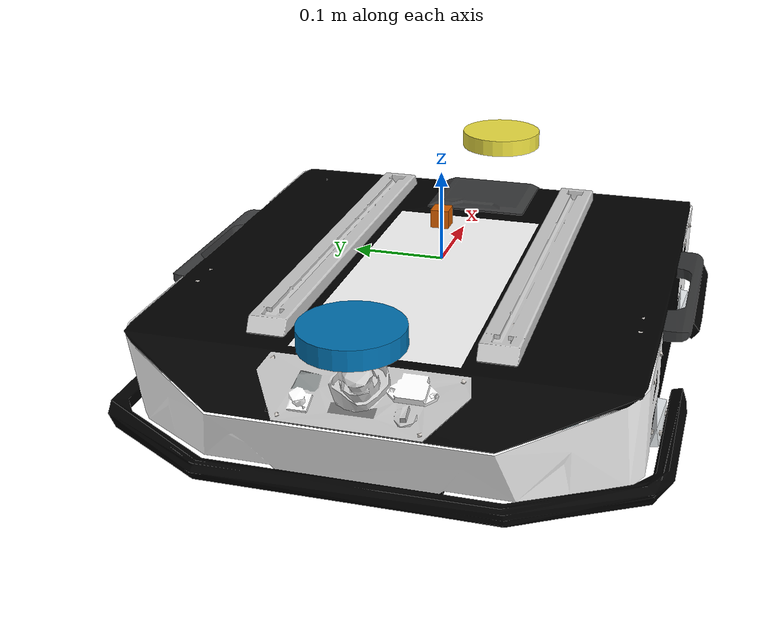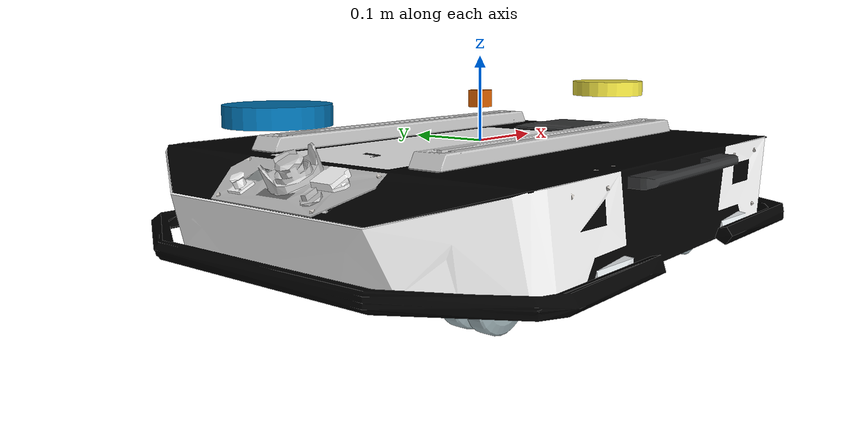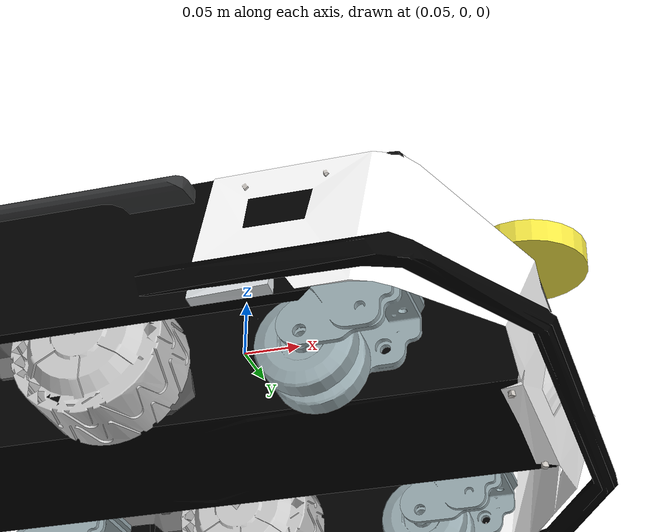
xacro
<?xml version="1.0" ?>
<!-- |    This document was autogenerated by xacro from /home/emir/catkin_ws/src/tracer_description/urdf/tracer_v1.xacro | -->
<!-- |    EDITING THIS FILE BY HAND IS NOT RECOMMENDED                                 | -->
<robot name="tracer_v1">
  <!-- Base link -->
  <link name="base_link">
    <visual>
      <origin rpy="1.57 0 0" xyz="0 0 0"/>
      <geometry>
        <mesh filename="package://tracer_description/meshes/tracer_base_link_no_wheel.dae"/>
      </geometry>
    </visual>
    <collision>
      <!--origin
            xyz="-0.0145261552504705 0.0231316650320557 0.00586280190939592"
            rpy="0 0 0" /-->
      <origin rpy="1.57 0 0" xyz="0 0 0"/>
      <geometry>
        <mesh filename="package://tracer_description/meshes/tracer_base_link_no_wheel.dae"/>
      </geometry>
    </collision>
  </link>
  <link name="inertial_link">
    <inertial>
      <!--mass value="44.3898489950015" /-->
      <mass value="132.3898489950015"/>
      <origin xyz="0.015 0.0231316650320557 0"/>
      <inertia ixx="0.185196122711036" ixy="4.30144213829512E-08" ixz="5.81037523686401E-08" iyy="0.364893736238929" iyz="-0.000386720198091934" izz="0.223868521722778"/>
    </inertial>
  </link>
  <joint name="inertial_joint" type="fixed">
    <origin rpy="0 0 0" xyz="0 0 0"/>
    <parent link="base_link"/>
    <child link="inertial_link"/>
  </joint>
  <!-- For testing, hang the robot up in the air -->
  <link name="right_wheel_link">
    <inertial>
      <mass value="6"/>
      <origin xyz="0 0 0"/>
      <inertia ixx="0.7171" ixy="0" ixz="0" iyy="0.1361" iyz="0" izz="0.7171"/>
    </inertial>
    <visual>
      <origin rpy="0 0 0" xyz="0 0 0"/>
      <geometry>
        <mesh filename="package://tracer_description/meshes/tracer_wheel.dae"/>
      </geometry>
    </visual>
    <collision>
      <origin rpy="0 0 0" xyz="0 0 0"/>
      <geometry>
        <mesh filename="package://tracer_description/meshes/tracer_wheel.dae"/>
      </geometry>
    </collision>
  </link>

  <!-- Ön LiDAR -->
  <link name="front_lidar_link">
    <inertial>
      <mass value="0.1"/>
      <origin xyz="0 0 0" rpy="0 0 0"/>
      <inertia ixx="0.01" ixy="0" ixz="0" iyy="0.01" iyz="0" izz="0.01"/>
    </inertial>
    <visual>
      <geometry>
        <cylinder radius="0.05" length="0.02"/> <!-- LiDAR'ın fiziksel şekli -->
      </geometry>
    </visual>
  </link>

  <joint name="front_lidar_joint" type="fixed">
    <parent link="base_link"/>
    <child link="front_lidar_link"/>
    <origin xyz="0.3 0 0.05" rpy="0 0 0"/> <!-- Ön LiDAR'ın konumu -->
  </joint>

  <gazebo reference="front_lidar_link">
    <sensor name="front_lidar_sensor" type="ray">
      <pose>0 0 0 0 0 0</pose>
      <visualize>true</visualize>
      <update_rate>20</update_rate> <!-- Güncelleme hızı -->
      <ray>
        <scan>
          <horizontal>
            <samples>540</samples> <!-- 270° / 0.5° çözünürlük -->
            <resolution>1</resolution>
            <min_angle>-3.14</min_angle>
            <max_angle>3.14</max_angle>
          </horizontal>
        </scan>
        <range>
          <min>0.1</min>
          <max>30.0</max> <!-- Maksimum menzil -->
          <resolution>0.01</resolution>
        </range>
      </ray>
      <plugin name="front_lidar_plugin" filename="libgazebo_ros_laser.so">
        <topicName>/front_lidar</topicName> <!-- ROS topic adı -->
        <frameName>front_lidar_link</frameName> <!-- LiDAR çerçevesi -->
      </plugin>
    </sensor>
  </gazebo>

  <!-- Arka LiDAR -->
  <link name="rear_lidar_link">
    <inertial>
      <mass value="0.1"/>
      <origin xyz="0 0 0" rpy="0 0 0"/>
      <inertia ixx="0.01" ixy="0" ixz="0" iyy="0.01" iyz="0" izz="0.01"/>
    </inertial>
    <visual>
      <geometry>
        <cylinder radius="0.05" length="0.02"/> <!-- LiDAR'ın fiziksel şekli -->
      </geometry>
    </visual>
  </link>

  <joint name="rear_lidar_joint" type="fixed">
    <parent link="base_link"/>
    <child link="rear_lidar_link"/>
    <origin xyz="-0.3 0 0.05" rpy="0 0 3.14159"/> <!-- Arka LiDAR'ın konumu -->
  </joint>

  <gazebo reference="rear_lidar_link">
    <sensor name="rear_lidar_sensor" type="ray">
      <pose>0 0 0 0 0 0</pose>
      <visualize>true</visualize>
      <update_rate>20</update_rate> <!-- Güncelleme hızı -->
      <ray>
        <scan>
          <horizontal>
            <samples>540</samples> <!-- 270° / 0.5° çözünürlük -->
            <resolution>1</resolution>
            <min_angle>-2.35619</min_angle>
            <max_angle>2.35619</max_angle>
          </horizontal>
        </scan>
        <range>
          <min>0.1</min>
          <max>30.0</max> <!-- Maksimum menzil -->
          <resolution>0.01</resolution>
        </range>
      </ray>
      <plugin name="rear_lidar_plugin" filename="libgazebo_ros_laser.so">
        <topicName>/rear_lidar</topicName> <!-- ROS topic adı -->
        <frameName>rear_lidar_link</frameName> <!-- LiDAR çerçevesi -->
      </plugin>
    </sensor>
  </gazebo>

  <gazebo>
    <plugin name="ground_truth" filename="libgazebo_ros_p3d.so">
      <frameName>world</frameName>
      <topicName>ground_truth/state</topicName>
      <bodyName>base_link</bodyName>
      <updateRate>50.0</updateRate>
      <gaussianNoise>0.0</gaussianNoise>
    </plugin>
  </gazebo>

  <link name="imu_link">
   <inertial>
    <mass value="0.1"/>
    <origin xyz="0 0 0" rpy="0 0 0"/>
    <inertia ixx="0.01" ixy="0" ixz="0" iyy="0.01" iyz="0" izz="0.01"/>
   </inertial>
   <visual>
    <geometry>
      <box size="0.02 0.02 0.02"/>
    </geometry>
   </visual>
  </link>

  <joint name="imu_joint" type="fixed">
   <parent link="base_link"/>
   <child link="imu_link"/>
   <origin xyz="0 0 0.05" rpy="0 0 0"/>
  </joint>

  <gazebo reference="imu_link">
    <gravity>true</gravity>
    <sensor name="imu_sensor" type="imu">
      <always_on>true</always_on>
      <update_rate>100</update_rate>
      <visualize>true</visualize>
      <topic>/imu/data</topic> <!-- ROS topic adı -->
      <plugin filename="libgazebo_ros_imu_sensor.so" name="imu_plugin">
        <topicName>/imu/data</topicName> <!-- ROS topic -->
        <bodyName>imu_link</bodyName> <!-- Bağlı olduğu link -->
        <updateRateHZ>100.0</updateRateHZ> <!-- Güncelleme frekansı -->
        <gaussianNoise>0.001745</gaussianNoise> <!-- Gürültü seviyesi (±0.1° drift için 0.001745 rad/s) -->
        <xyzOffset>0 0 0.05</xyzOffset> <!-- Konum ofseti -->
        <rpyOffset>0 0 0</rpyOffset> <!-- Rotasyon ofseti -->
        <frameName>imu_link</frameName> <!-- Referans çerçeve -->
        <initialOrientationAsReference>false</initialOrientationAsReference>
      </plugin>
      <pose>0 0 0.05 0 0 0</pose> <!-- IMU'nun konumu -->
    </sensor>
  </gazebo>

  <joint name="right_wheel" type="continuous">
    <parent link="base_link"/>
    <child link="right_wheel_link"/>
    <origin rpy="0 0 0" xyz="0 -0.17 -0.082"/>
    <axis rpy="0 0 0" xyz="0 1 0"/>
  </joint>
  <link name="left_wheel_link">
    <inertial>
      <mass value="6"/>
      <origin xyz="0 0 0"/>
      <inertia ixx="0.7171" ixy="0" ixz="0" iyy="0.1361" iyz="0" izz="0.7171"/>
    </inertial>
    <visual>
      <origin rpy="0 0 0" xyz="0 0 0"/>
      <geometry>
        <mesh filename="package://tracer_description/meshes/tracer_wheel.dae"/>
      </geometry>
    </visual>
    <collision>
      <origin rpy="0 0 0" xyz="0 0 0"/>
      <geometry>
        <mesh filename="package://tracer_description/meshes/tracer_wheel.dae"/>
      </geometry>
    </collision>
  </link>
  <joint name="left_wheel" type="continuous">
    <parent link="base_link"/>
    <child link="left_wheel_link"/>
    <origin rpy="3.14 0 0" xyz="0 0.17 -0.082"/>
    <axis rpy="0 0 0" xyz="0 1 0"/>
  </joint>
  <!--tracer castor wheel-->
  <link name="fl_castor_link">
    <inertial>
      <mass value="1"/>
      <origin xyz="0 0 0"/>
      <inertia ixx="0.7171" ixy="0" ixz="0" iyy="0.1361" iyz="0" izz="0.7171"/>
    </inertial>
    <visual>
      <geometry>
        <mesh filename="package://tracer_description/meshes/castor_joint.dae"/>
      </geometry>
    </visual>
  </link>
  <joint name="fl_castor_wheel" type="continuous">
    <origin rpy="-1.57 0 0" xyz="0.18955 0.17 -0.0380886"/>
    <parent link="base_link"/>
    <child link="fl_castor_link"/>
    <axis rpy="0 0 0" xyz="0 1 0"/>
  </joint>
  <link name="fr_castor_link">
    <inertial>
      <mass value="1"/>
      <origin xyz="0 0 0"/>
      <inertia ixx="0.7171" ixy="0" ixz="0" iyy="0.1361" iyz="0" izz="0.7171"/>
    </inertial>
    <visual>
      <geometry>
        <mesh filename="package://tracer_description/meshes/castor_joint.dae"/>
      </geometry>
    </visual>
  </link>
  <joint name="fr_castor_wheel" type="continuous">
    <origin rpy="-1.57 0 0" xyz="0.18955 -0.17 -0.0380886"/>
    <parent link="base_link"/>
    <child link="fr_castor_link"/>
    <axis rpy="0 0 0" xyz="0 1 0"/>
  </joint>
  <link name="rr_castor_link">
    <inertial>
      <mass value="1"/>
      <origin xyz="0 0 0"/>
      <inertia ixx="0.7171" ixy="0" ixz="0" iyy="0.1361" iyz="0" izz="0.7171"/>
    </inertial>
    <visual>
      <geometry>
        <mesh filename="package://tracer_description/meshes/castor_joint.dae"/>
      </geometry>
    </visual>
  </link>
  <joint name="rr_castor_wheel" type="continuous">
    <origin rpy="-1.57 0 0" xyz="-0.18955 -0.17 -0.0380886"/>
    <parent link="base_link"/>
    <child link="rr_castor_link"/>
    <axis rpy="0 0 0" xyz="0 1 0"/>
  </joint>
  <link name="rl_castor_link">
    <inertial>
      <mass value="1"/>
      <origin xyz="0 0 0"/>
      <inertia ixx="0.7171" ixy="0" ixz="0" iyy="0.1361" iyz="0" izz="0.7171"/>
    </inertial>
    <visual>
      <geometry>
        <mesh filename="package://tracer_description/meshes/castor_joint.dae"/>
      </geometry>
    </visual>
  </link>
  <joint name="rl_castor_wheel" type="continuous">
    <origin rpy="-1.57 0 0" xyz="-0.18955 0.17 -0.0380886"/>
    <parent link="base_link"/>
    <child link="rl_castor_link"/>
    <axis rpy="0 0 0" xyz="0 1 0"/>
  </joint>
  <link name="fl_wheel_link">
    <inertial>
      <mass value="1"/>
      <origin xyz="0 0 0"/>
      <inertia ixx="0.3131" ixy="0" ixz="0" iyy="0.3131" iyz="0" izz="0.1361"/>
    </inertial>
    <visual>
      <geometry>
        <mesh filename="package://tracer_description/meshes/castor.dae"/>
      </geometry>
    </visual>
    <collision>
      <origin rpy="0 0 0" xyz="0 0 0"/>
      <geometry>
        --&gt;

        <mesh filename="package://tracer_description/meshes/castor.dae"/>
      </geometry>
    </collision>
  </link>
  <joint name="fl_wheel" type="continuous">
    <parent link="fl_castor_link"/>
    <child link="fl_wheel_link"/>
    <dynamics damping="0.0" friction="0.0"/>
    <origin rpy="0 0 0" xyz="-0.0218084 0.067 0"/>
    <axis rpy="0 0 0" xyz="0 0 1"/>
  </joint>
  <link name="fr_wheel_link">
    <inertial>
      <mass value="1"/>
      <origin xyz="0 0 0"/>
      <inertia ixx="0.3131" ixy="0" ixz="0" iyy="0.3131" iyz="0" izz="0.1361"/>
    </inertial>
    <visual>
      <geometry>
        <mesh filename="package://tracer_description/meshes/castor.dae"/>
      </geometry>
    </visual>
    <collision>
      <origin rpy="0 0 0" xyz="0 0 0"/>
      <geometry>
        --&gt;

        <mesh filename="package://tracer_description/meshes/castor.dae"/>
      </geometry>
    </collision>
  </link>
  <joint name="fr_wheel" type="continuous">
    <parent link="fr_castor_link"/>
    <child link="fr_wheel_link"/>
    <dynamics damping="0.0" friction="0.0"/>
    <origin rpy="0 0 0" xyz="-0.0218084 0.067 0"/>
    <axis rpy="0 0 0" xyz="0 0 1"/>
  </joint>
  <link name="rr_wheel_link">
    <inertial>
      <mass value="1"/>
      <origin xyz="0 0 0"/>
      <inertia ixx="0.3131" ixy="0" ixz="0" iyy="0.3131" iyz="0" izz="0.1361"/>
    </inertial>
    <visual>
      <geometry>
        <mesh filename="package://tracer_description/meshes/castor.dae"/>
      </geometry>
    </visual>
    <collision>
      <origin rpy="0 0 0" xyz="0 0 0"/>
      <geometry>
        <mesh filename="package://tracer_description/meshes/castor.dae"/>
      </geometry>
    </collision>
  </link>
  <joint name="rr_wheel" type="continuous">
    <parent link="rr_castor_link"/>
    <child link="rr_wheel_link"/>
    <dynamics damping="0.0" friction="0.0"/>
    <origin rpy="0 0 0" xyz="-0.0218084 0.067 0"/>
    <axis rpy="0 0 0" xyz="0 0 1"/>
  </joint>
  <link name="rl_wheel_link">
    <inertial>
      <mass value="1"/>
      <origin xyz="0 0 0"/>
      <inertia ixx="0.3131" ixy="0" ixz="0" iyy="0.3131" iyz="0" izz="0.1361"/>
    </inertial>
    <visual>
      <geometry>
        <mesh filename="package://tracer_description/meshes/castor.dae"/>
      </geometry>
    </visual>
    <collision>
      <origin rpy="0 0 0" xyz="0 0 0"/>
      <geometry>
        <mesh filename="package://tracer_description/meshes/castor.dae"/>
      </geometry>
    </collision>
  </link>
  <joint name="rl_wheel" type="continuous">
    <parent link="rl_castor_link"/>
    <child link="rl_wheel_link"/>
    <dynamics damping="0.0" friction="0.0"/>
    <origin rpy="0 0 0" xyz="-0.0218084 0.067 0"/>
    <axis rpy="0 0 0" xyz="0 0 1"/>
  </joint>
  <!-- Additional definitions for simulation -->
  <transmission name="right_wheel_trans" type="SimpleTransmission">
    <type>transmission_interface/SimpleTransmission</type>
    <actuator name="right_wheel_motor">
      <mechanicalReduction>1</mechanicalReduction>
    </actuator>
    <joint name="right_wheel">
      <hardwareInterface>hardware_interface/VelocityJointInterface</hardwareInterface>
    </joint>
  </transmission>
  <transmission name="left_wheel_trans" type="SimpleTransmission">
    <type>transmission_interface/SimpleTransmission</type>
    <actuator name="left_wheel_motor">
      <mechanicalReduction>1</mechanicalReduction>
    </actuator>
    <joint name="left_wheel">
      <hardwareInterface>hardware_interface/VelocityJointInterface</hardwareInterface>
    </joint>
  </transmission>
  <transmission name="fl_wheel_trans" type="SimpleTransmission">
    <type>transmission_interface/SimpleTransmission</type>
    <actuator name="fl_wheel_motor">
      <mechanicalReduction>1</mechanicalReduction>
    </actuator>
    <joint name="fl_wheel">
      <hardwareInterface>hardware_interface/VelocityJointInterface</hardwareInterface>
    </joint>
  </transmission>
  <transmission name="fr_wheel_trans" type="SimpleTransmission">
    <type>transmission_interface/SimpleTransmission</type>
    <actuator name="fr_wheel_motor">
      <mechanicalReduction>1</mechanicalReduction>
    </actuator>
    <joint name="fr_wheel">
      <hardwareInterface>hardware_interface/VelocityJointInterface</hardwareInterface>
    </joint>
  </transmission>
  <transmission name="rr_wheel_trans" type="SimpleTransmission">
    <type>transmission_interface/SimpleTransmission</type>
    <actuator name="rr_wheel_motor">
      <mechanicalReduction>1</mechanicalReduction>
    </actuator>
    <joint name="rr_wheel">
      <hardwareInterface>hardware_interface/VelocityJointInterface</hardwareInterface>
    </joint>
  </transmission>
  <transmission name="rl_wheel_trans" type="SimpleTransmission">
    <type>transmission_interface/SimpleTransmission</type>
    <actuator name="rl_wheel_motor">
      <mechanicalReduction>1</mechanicalReduction>
    </actuator>
    <joint name="rl_wheel">
      <hardwareInterface>hardware_interface/VelocityJointInterface</hardwareInterface>
    </joint>
  </transmission>
  <transmission name="fl_castor_wheel_trans" type="SimpleTransmission">
    <type>transmission_interface/SimpleTransmission</type>
    <actuator name="fl_castor_wheel_motor">
      <mechanicalReduction>1</mechanicalReduction>
    </actuator>
    <joint name="fl_castor_wheel">
      <hardwareInterface>hardware_interface/VelocityJointInterface</hardwareInterface>
    </joint>
  </transmission>
  <transmission name="fr_castor_wheel_trans" type="SimpleTransmission">
    <type>transmission_interface/SimpleTransmission</type>
    <actuator name="fr_castor_wheel_motor">
      <mechanicalReduction>1</mechanicalReduction>
    </actuator>
    <joint name="fr_castor_wheel">
      <hardwareInterface>hardware_interface/VelocityJointInterface</hardwareInterface>
    </joint>
  </transmission>
  <transmission name="rr_castor_wheel_trans" type="SimpleTransmission">
    <type>transmission_interface/SimpleTransmission</type>
    <actuator name="rr_castor_wheel_motor">
      <mechanicalReduction>1</mechanicalReduction>
    </actuator>
    <joint name="rr_castor_wheel">
      <hardwareInterface>hardware_interface/VelocityJointInterface</hardwareInterface>
    </joint>
  </transmission>
  <transmission name="rl_castor_wheel_trans" type="SimpleTransmission">
    <type>transmission_interface/SimpleTransmission</type>
    <actuator name="rl_castor_wheel_motor">
      <mechanicalReduction>1</mechanicalReduction>
    </actuator>
    <joint name="rl_castor_wheel">
      <hardwareInterface>hardware_interface/VelocityJointInterface</hardwareInterface>
    </joint>
  </transmission>
  <!-- Controller configurations -->
  <gazebo>
    <plugin filename="libgazebo_ros_control.so" name="gazebo_ros_control">
      <robotNamespace>/</robotNamespace>
    </plugin>
  </gazebo>
  <!-- kp spring constant, kd damping constant -->
  <gazebo>
    <mu1 value="1.0"/>
    <mu2 value="0.9"/>
    <kp value="10000000.0"/>
    <kd value="1.0"/>
    <fdir1 value="1 0 0"/>
    <minDepth value="0.001"/>
    <maxContacts value="64"/>
  </gazebo>
</robot>
